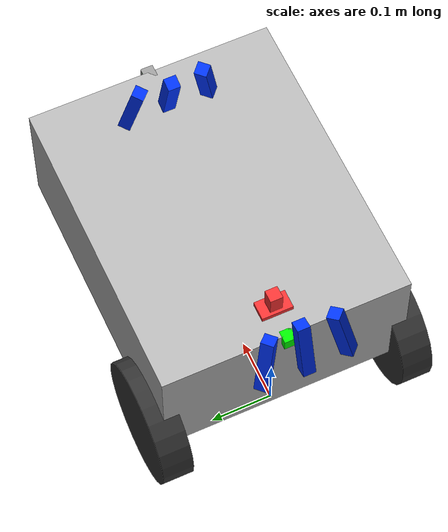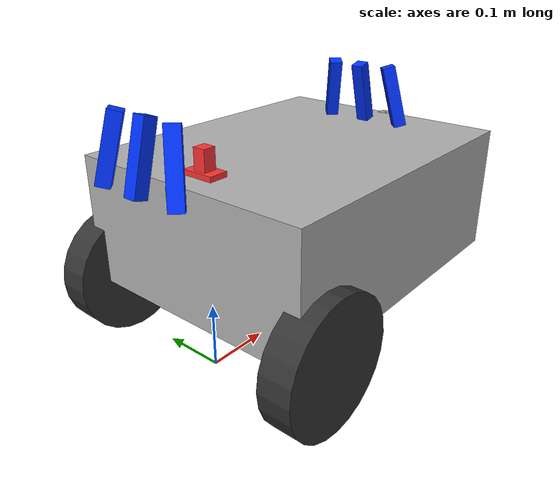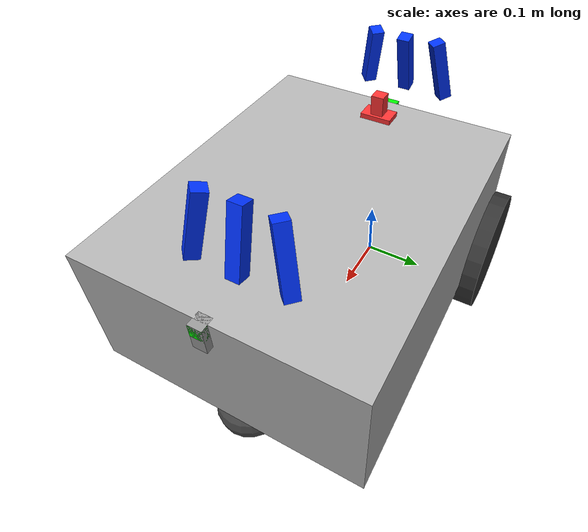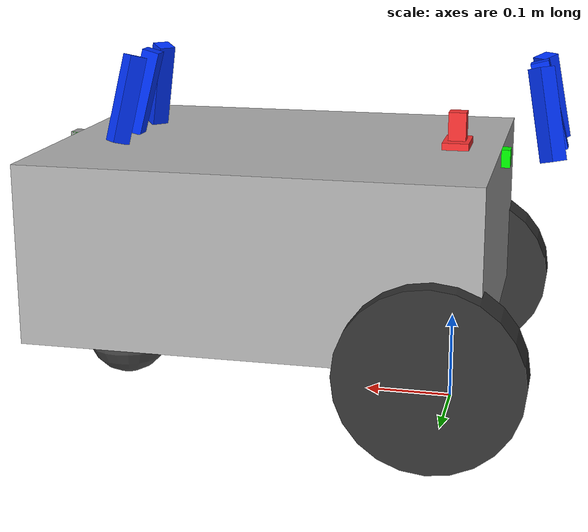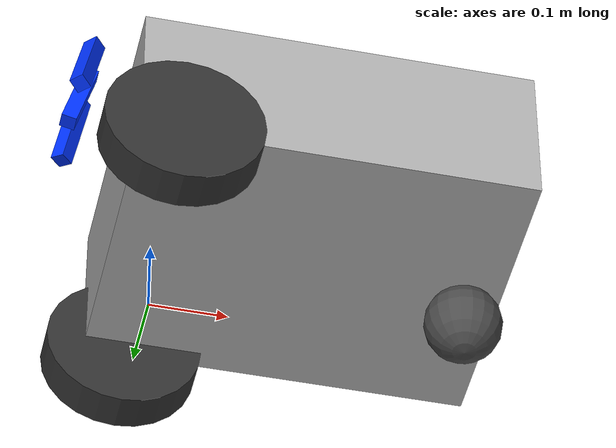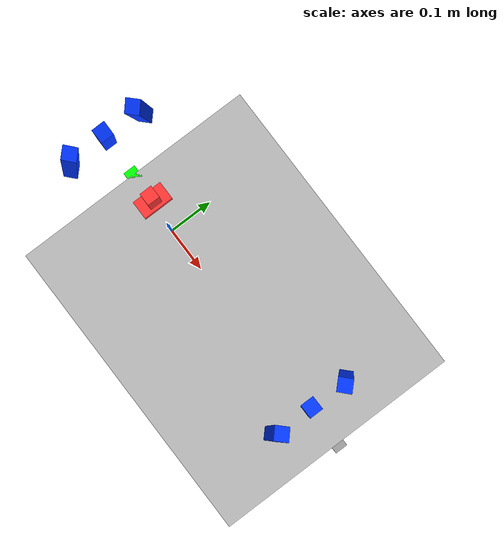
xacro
<?xml version="1.0"?>
<robot name="microbot" xmlns:xacro="http://www.ros.org/wiki/xacro">
    <xacro:include filename="$(find mower_simu)/model/base.xacro" />
    <xacro:include filename="$(find mower_simu)/model/gps.xacro" />
    <xacro:include filename="$(find mower_simu)/model/imu.xacro" />
    <xacro:include filename="$(find mower_simu)/model/sonar.xacro" />
    <xacro:include filename="$(find mower_simu)/model/camera.xacro" />
    <xacro:include filename="$(find mower_simu)/model/edge.xacro" />
</robot>

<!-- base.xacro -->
<robot name="microbot" xmlns:xacro="http://www.ros.org/wiki/xacro">
    <xacro:property name="M_PI" value="3.1415926"/>
    <xacro:property name="BASE_LINK_MASS"   value="10" />
    <xacro:property name="BASE_LINK_LENGTH" value="0.50"/>
    <xacro:property name="BASE_LINK_WIDTH" value="0.40"/>
    <xacro:property name="BASE_LINK_HEIGHT" value="0.20"/>

    <xacro:property name="WHEEL_MASS"   value="1" />
    <xacro:property name="WHEEL_RADIUS" value="0.1"/>
    <xacro:property name="WHEEL_WIDTH" value="0.05"/>
    <xacro:property name="WHEEL_POS_X" value="0.2"/>
    <xacro:property name="WHEEL_POS_Y" value="0.2"/>

    <xacro:property name="CASTER_MASS" value="0.2"/>
    <xacro:property name="CASTER_RADIUS" value="0.05"/>

    <material name="Black">
        <color rgba="0.2 0.2 0.2 1"/>
    </material>

    <material name="Grey">
        <color rgba="0.7 0.7 0.7 1"/>
    </material>

    <material name="DarkGrey">
        <color rgba="0.3 0.3 0.3 1"/>
    </material>
    <material name="Blue">
        <color rgba="0.0 0.2 1 1"/>
    </material>
    <material name="Red">
        <color rgba="1 0.2 0.2 1"/>
    </material>
    <material name="Green">
        <color rgba="0 1 0 1"/>
    </material>

    <xacro:macro name="sphere_inertial_matrix" params="m r">
        <inertial>
            <mass value="${m}" />
            <inertia ixx="${2*m*r*r/5}" ixy="0" ixz="0"
                iyy="${2*m*r*r/5}" iyz="0"
                izz="${2*m*r*r/5}" />
        </inertial>
    </xacro:macro>

    <xacro:macro name="cylinder_inertial_matrix" params="m r h">
        <inertial>
            <mass value="${m}" />
            <inertia ixx="${m*(3*r*r+h*h)/12}" ixy = "0" ixz = "0"
                iyy="${m*(3*r*r+h*h)/12}" iyz = "0"
                izz="${m*r*r/2}" />
        </inertial>
    </xacro:macro>

    <xacro:macro name="box_inertial_matrix" params="m a b c">
       <inertial>
          <mass value="${m}" />
           <inertia ixx="${m*(b*b+c*c)/12}" ixy = "0" ixz = "0"
              iyy="${m*(c*c+a*a)/12}" iyz = "0"
              izz="${m*(a*a+b*b)/12}" />
       </inertial>
    </xacro:macro>

    <link name="base_footprint">
        <visual>
            <origin xyz="0 0 0" rpy="0 0 0" />
            <geometry>
                <box size="0.001 0.001 0.001" />
            </geometry>
        </visual>
    </link>

    <gazebo reference="base_footprint">
        <turnGravityOff>false</turnGravityOff>
    </gazebo>

    <joint name="base_footprint_joint" type="fixed">
        <origin xyz="${WHEEL_POS_X} 0 ${BASE_LINK_HEIGHT/2 + CASTER_RADIUS*2}" rpy="0 0 0" />
        <parent link="base_footprint"/>
        <child link="base_link"/>
    </joint>

    <link name="base_link">
        <visual>
            <origin xyz="0 0 0" rpy="0 0 0"/>
            <geometry>
                <box size="${BASE_LINK_LENGTH} ${BASE_LINK_WIDTH} ${BASE_LINK_HEIGHT}" />
            </geometry>
            <material name="Grey"/>
        </visual>
        <collision>
            <origin xyz=" 0 0 0" rpy="0 0 0" />
            <geometry>
                <box size="${BASE_LINK_LENGTH} ${BASE_LINK_WIDTH} ${BASE_LINK_HEIGHT}"/>
            </geometry>
        </collision>
        <box_inertial_matrix  m="${BASE_LINK_MASS}" a="${BASE_LINK_LENGTH}" b="${BASE_LINK_WIDTH}"  c="${BASE_LINK_HEIGHT}" />
    </link>
    <gazebo reference="base_link">
        <material>Gazebo/Yellow</material>
    </gazebo>

    <joint name="front_caster_joint" type="continuous">
        <origin xyz="${WHEEL_POS_X} 0 ${-1*BASE_LINK_HEIGHT/2 - CASTER_RADIUS}" rpy="0 0 0"/>
        <parent link="base_link"/>
        <child link="front_caster_link"/>
        <axis xyz="1 1 0"/>
    </joint>/

    <link name="front_caster_link">
        <visual>
            <origin xyz="0 0 0" rpy="0 0 0"/>
            <geometry>
                <sphere radius="${CASTER_RADIUS}"/>
            </geometry>
            <material name="DarkGrey"/>
        </visual>
        <collision>
            <origin xyz="0 0 0" rpy="0 0 0"/>
            <geometry>
                <sphere radius="${CASTER_RADIUS}" />
            </geometry>
        </collision>
        <sphere_inertial_matrix  m="${CASTER_MASS}" r="${CASTER_RADIUS}" />
    </link>
    <gazebo reference="front_caster_link">
        <material>Gazebo/DarkGrey</material>
        <mu1>0</mu1>
        <mu2>0</mu2>
        <kp>10000000</kp>
        <kd>1</kd>
    </gazebo>

    <xacro:macro name="wheel" params="prefix reflect">
        <joint name="${prefix}_wheel_joint" type="continuous">
            <origin xyz="${-WHEEL_POS_X} ${reflect * WHEEL_POS_Y} ${-1*BASE_LINK_HEIGHT/2}" rpy="0 0 0"/>
            <parent link="base_link"/>
            <child link="${prefix}_wheel_link"/>
            <axis xyz="0 1 0"/>

        </joint>

        <link name="${prefix}_wheel_link">
            <visual>
                <origin xyz="0 0 0"  rpy="${M_PI/2} 0 0"/>
                <geometry>
                    <cylinder radius="${WHEEL_RADIUS}" length="${WHEEL_WIDTH}"/>
                </geometry>
                <material name="Black"/>
            </visual>
            <collision>
                <origin xyz="0 0 0" rpy="${M_PI/2} 0 0" />
                <geometry>
                    <cylinder radius="${WHEEL_RADIUS}" length = "${WHEEL_WIDTH}"/>
                </geometry>
            </collision>
            <cylinder_inertial_matrix  m="${WHEEL_MASS}" r="${WHEEL_RADIUS}" h="${WHEEL_WIDTH}" />
        </link>
        <gazebo reference="${prefix}_wheel_link">
            <material>Gazebo/Black</material>
	        <mu1>10000000</mu1>
		    <mu2>10000000</mu2>
		    <kp>10000000</kp>
		    <kd>1</kd>
        </gazebo>

        <transmission name="${prefix}_wheel_joint_trans">
            <type>transmission_interface/SimpleTransmission</type>
            <joint name="${prefix}_wheel_joint" >
                <hardwareInterface>hardware_interface/VelocityJointInterface</hardwareInterface>
            </joint>
            <actuator name="${prefix}_wheel_joint_motor">
                <hardwareInterface>hardware_interface/VelocityJointInterface</hardwareInterface>
                <mechanicalReduction>1</mechanicalReduction>
            </actuator>
        </transmission>

    </xacro:macro>

    <wheel prefix="left" reflect="1"/>
    <wheel prefix="right" reflect="-1"/>

    <gazebo>
        <plugin name="differential_drive_controller"
                filename="libgazebo_ros_diff_drive.so">
            <rosDebugLevel>Debug</rosDebugLevel>
            <publishWheelTF>false</publishWheelTF>
            <robotNamespace>/</robotNamespace>
            <odometrySource>world</odometrySource>

            <publishOdomTF>false</publishOdomTF>
            <broadcastTF>0</broadcastTF>
            <publishTf>0</publishTf>
            <publishWheelJointState>false</publishWheelJointState>

            <alwaysOn>true</alwaysOn>
            <updateRate>100.0</updateRate>
            <legacyMode>true</legacyMode>
            <leftJoint>left_wheel_joint</leftJoint>
            <rightJoint>right_wheel_joint</rightJoint>
            <wheelSeparation>${WHEEL_POS_Y*2}</wheelSeparation>
            <wheelDiameter>${2*WHEEL_RADIUS}</wheelDiameter>

            <wheelTorque>30</wheelTorque>
            <wheelAcceleration>2</wheelAcceleration>
            <commandTopic>cmd_vel</commandTopic>
            <odometryFrame>odom</odometryFrame>
            <odometryTopic></odometryTopic>
            <robotBaseFrame>base_footprint</robotBaseFrame>
        </plugin>

        <plugin name="joint_state_publisher_left" filename="libgazebo_ros_joint_state_publisher.so">
            <ros>
                <namespace>microbot</namespace>
            </ros>
            <jointName>left_wheel_joint</jointName>
            <updateRate>100</updateRate>
        </plugin>

        <plugin name="joint_state_publisher_right" filename="libgazebo_ros_joint_state_publisher.so">
            <ros>
                <namespace>microbot</namespace>
            </ros>
            <jointName>right_wheel_joint</jointName>
            <updateRate>100</updateRate>
        </plugin>

    </gazebo>

</robot>

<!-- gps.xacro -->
<robot name="microbot" xmlns:xacro="http://www.ros.org/wiki/xacro">
    <xacro:property name="GPS_MASS" value="0.01"/>
    <xacro:property name="GPS_POS_X" value="0.2"/>
    <xacro:property name="GPS_LENGTH" value="0.03"/>
    <xacro:property name="GPS_WIDTH" value="0.05"/>
    <xacro:property name="GPS_HEIGHT" value="0.008"/>

    <joint name="gps_base_joint" type="fixed">
        <origin xyz="${-GPS_POS_X} 0 ${BASE_LINK_HEIGHT/2+GPS_HEIGHT/2}" rpy="0 0 0"/>
        <parent link="base_link"/>
        <child link="gps_link"/>
        <axis xyz="0 0 0"/>
    </joint>

    <link name="gps_link">
        <visual>
            <origin xyz="0 0 0" rpy="0 0 0"/>
            <geometry>
                <box size="${GPS_LENGTH} ${GPS_WIDTH} ${GPS_HEIGHT}"/>
            </geometry>
            <material name="Red"/>
        </visual>
    </link>
    <gazebo reference="gps_link">
        <material>Gazebo/Black</material>
    </gazebo>

    <gazebo>
        <plugin name="gps" filename="libhector_gazebo_ros_gps.so">
            <updateRate>10.0</updateRate>
            <topicName>sensor_msgs/NavSatFix</topicName>
            <gaussianNoise>0.02 0.02 0.02</gaussianNoise>
            <velocityGaussianNoise>0 0 0</velocityGaussianNoise>
            <frameId>base_link</frameId>
            <referenceLatitude>40.14624865</referenceLatitude>
            <referenceLongitude>116.41126261</referenceLongitude>
            <referenceAltitude>30.0</referenceAltitude>
            <referenceHeading>90</referenceHeading>
        </plugin>
    </gazebo>
</robot>

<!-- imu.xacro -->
<robot name="microbot" xmlns:xacro="http://www.ros.org/wiki/xacro">
    <xacro:property name="IMU_MASS" value="0.01"/>
    <xacro:property name="IMU_POS_X" value="0.2"/>
    <xacro:property name="IMU_LENGTH" value="0.02"/>
    <xacro:property name="IMU_WIDTH" value="0.02"/>
    <xacro:property name="IMU_HEIGHT" value="0.04"/>

    <joint name="imu_base_joint" type="fixed">
        <origin xyz="${-IMU_POS_X} 0 ${BASE_LINK_HEIGHT/2+IMU_HEIGHT/2}" rpy="0 0 0"/>
        <parent link="base_link"/>
        <child link="imu_link"/>
        <axis xyz="0 0 0"/>
    </joint>

    <link name="imu_link">
        <visual>
            <origin xyz="0 0 0" rpy="0 0 0"/>
            <geometry>
                <box size="${IMU_LENGTH} ${IMU_WIDTH} ${IMU_HEIGHT}"/>
            </geometry>
            <material name="Red"/>
        </visual>
    </link>
    <gazebo reference="imu_link">
        <material>Gazebo/Green</material>
    </gazebo>

    <gazebo>
        <plugin name="imu" filename="libhector_gazebo_ros_imu.so">
            <updateRate>10.0</updateRate>
            <frameId>base_link</frameId>
            <topicName>sensor_msgs/Imu</topicName>
            <biasTopicName>imu/bias</biasTopicName>
            <gaussianNoise>0.1 0.1 0.1</gaussianNoise>
            <xyzOffset >0.0 0.0 0.0</xyzOffset>
            <rpyOffset >0.0 0.0 0.0</rpyOffset>
            <bodyName>imu_link</bodyName>
        </plugin>
    </gazebo>
</robot>

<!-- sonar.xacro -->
<robot name="microbot" xmlns:xacro="http://www.ros.org/wiki/xacro">
    <xacro:property name="SONAR_MASS" value="0.01"/>
    <xacro:property name="SONAR_POS_X_FRONT" value="0.17"/>
    <xacro:property name="SONAR_POS_X_REAR" value="0.30"/>
    <xacro:property name="SONAR_POS_Y" value="0.06"/>
    <xacro:property name="SONAR_ANGLE" value="0.78539815"/>
    <xacro:property name="SONAR_PITCH_ANGLE" value="0.26"/>
    <xacro:property name="SONAR_SENSOR_ANGLE" value="0.26"/>
    <xacro:property name="FOV" value="0.52"/>
    <xacro:property name="MATH_PI" value="3.1415926"/>

    <xacro:property name="MIN_DISTANCE" value="0.02"/>
    <xacro:property name="MAX_DISTANCE" value="4.0"/>
    <xacro:property name="RESOLUTION" value="0.01"/>

    <xacro:property name="SONAR_LENGTH" value="0.02"/>
    <xacro:property name="SONAR_WIDTH" value="0.02"/>
    <xacro:property name="SONAR_HEIGHT" value="0.1"/>

    <xacro:property name="NOISE" value="0.0"/>

    <joint name="sonar_base_joint_front_left" type="fixed">
        <origin xyz="${SONAR_POS_X_FRONT} ${SONAR_POS_Y} ${BASE_LINK_HEIGHT/2+SONAR_HEIGHT/2}" rpy="0 ${-SONAR_PITCH_ANGLE} ${SONAR_ANGLE}"/>
        <parent link="base_link"/>
        <child link="sonar_link_front_left"/>
        <axis xyz="0 0 0"/>
    </joint>

    <joint name="sonar_base_joint_front_center" type="fixed">
        <origin xyz="${SONAR_POS_X_FRONT} 0 ${BASE_LINK_HEIGHT/2+SONAR_HEIGHT/2}" rpy="0 ${-SONAR_PITCH_ANGLE} 0"/>
        <parent link="base_link"/>
        <child link="sonar_link_front_center"/>
        <axis xyz="0 0 0"/>
    </joint>

    <joint name="sonar_base_joint_front_right" type="fixed">
        <origin xyz="${SONAR_POS_X_FRONT} ${-SONAR_POS_Y} ${BASE_LINK_HEIGHT/2+SONAR_HEIGHT/2}" rpy="0 ${-SONAR_PITCH_ANGLE} ${-SONAR_ANGLE}"/>
        <parent link="base_link"/>
        <child link="sonar_link_front_right"/>
        <axis xyz="0 0 0"/>
    </joint>

    <joint name="sonar_base_rear_left" type="fixed">
        <origin xyz="${-SONAR_POS_X_REAR} ${-SONAR_POS_Y} ${BASE_LINK_HEIGHT/2+SONAR_HEIGHT/2}" rpy="0 ${-SONAR_PITCH_ANGLE} ${MATH_PI+SONAR_ANGLE}"/>
        <parent link="base_link"/>
        <child link="sonar_link_rear_left"/>
        <axis xyz="0 0 0"/>
    </joint>

    <joint name="sonar_base_rear_center" type="fixed">
        <origin xyz="${-SONAR_POS_X_REAR} 0 ${BASE_LINK_HEIGHT/2+SONAR_HEIGHT/2}" rpy="0 ${-SONAR_PITCH_ANGLE} ${MATH_PI}"/>
        <parent link="base_link"/>
        <child link="sonar_link_rear_center"/>
        <axis xyz="0 0 0"/>
    </joint>

    <joint name="sonar_base_rear_right" type="fixed">
        <origin xyz="${-SONAR_POS_X_REAR} ${SONAR_POS_Y} ${BASE_LINK_HEIGHT/2+SONAR_HEIGHT/2}" rpy="0 ${-SONAR_PITCH_ANGLE} ${MATH_PI-SONAR_ANGLE}"/>
        <parent link="base_link"/>
        <child link="sonar_link_rear_right"/>
        <axis xyz="0 0 0"/>
    </joint>

    <link name="sonar_link_front_left">
        <visual>
            <origin xyz="0 0 0" rpy="0 0 0"/>
            <geometry>
                <box size="${SONAR_LENGTH} ${SONAR_WIDTH} ${SONAR_HEIGHT}"/>
            </geometry>
            <material name="Blue"/>
        </visual>
    </link>
    <link name="sonar_link_front_center">
        <visual>
            <origin xyz="0 0 0" rpy="0 0 0"/>
            <geometry>
                <box size="${SONAR_LENGTH} ${SONAR_WIDTH} ${SONAR_HEIGHT}"/>
            </geometry>
            <material name="Blue"/>
        </visual>
    </link>
    <link name="sonar_link_front_right">
        <visual>
            <origin xyz="0 0 0" rpy="0 0 0"/>
            <geometry>
                <box size="${SONAR_LENGTH} ${SONAR_WIDTH} ${SONAR_HEIGHT}"/>
            </geometry>
            <material name="Blue"/>
        </visual>
    </link>

   <link name="sonar_link_rear_left">
        <visual>
            <origin xyz="0 0 0" rpy="0 0 0"/>
            <geometry>
                <box size="${SONAR_LENGTH} ${SONAR_WIDTH} ${SONAR_HEIGHT}"/>
            </geometry>
            <material name="Blue"/>
        </visual>
    </link>
    <link name="sonar_link_rear_center">
        <visual>
            <origin xyz="0 0 0" rpy="0 0 0"/>
            <geometry>
                <box size="${SONAR_LENGTH} ${SONAR_WIDTH} ${SONAR_HEIGHT}"/>
            </geometry>
            <material name="Blue"/>
        </visual>
    </link>
    <link name="sonar_link_rear_right">
        <visual>
            <origin xyz="0 0 0" rpy="0 0 0"/>
            <geometry>
                <box size="${SONAR_LENGTH} ${SONAR_WIDTH} ${SONAR_HEIGHT}"/>
            </geometry>
            <material name="Blue"/>
        </visual>
    </link>

    <gazebo reference="sonar_link_front_left">
        <material>Gazebo/Blue</material>
    </gazebo>
    <gazebo reference="sonar_link_front_center">
        <material>Gazebo/Blue</material>
    </gazebo>
    <gazebo reference="sonar_link_front_right">
        <material>Gazebo/Blue</material>
    </gazebo>

    <gazebo reference="sonar_link_rear_left">
        <material>Gazebo/Blue</material>
    </gazebo>
    <gazebo reference="sonar_link_rear_center">
        <material>Gazebo/Blue</material>
    </gazebo>
    <gazebo reference="sonar_link_rear_right">
        <material>Gazebo/Blue</material>
    </gazebo>

    <gazebo reference="sonar_link_front_left">
        <sensor type="ray" name="sonar_link_front_left">
        <pose>0 0 0 0 0 0</pose>
        <visualize>true</visualize>
        <update_rate>10</update_rate>
        <ray>
            <scan>
            <horizontal>
                <samples>10</samples>
                <resolution>1</resolution>
                <min_angle>${-SONAR_SENSOR_ANGLE}</min_angle>
                <max_angle>${SONAR_SENSOR_ANGLE}</max_angle>
            </horizontal>
            <vertical>
                <samples>10</samples>
                <resolution>1</resolution>
                <min_angle>${-SONAR_SENSOR_ANGLE}</min_angle>
                <max_angle>${SONAR_SENSOR_ANGLE}</max_angle>
            </vertical>
            </scan>
            <range>
                <min>${MIN_DISTANCE}</min>
                <max>${MAX_DISTANCE}</max>
                <resolution>${RESOLUTION}</resolution>
            </range>
        </ray>
        <plugin name="ultrasonic_sensor_controller" filename="libgazebo_ros_range.so">
            <gaussianNoise>${NOISE}</gaussianNoise>
            <alwaysOn>true</alwaysOn>
            <updateRate>10</updateRate>
            <topicName>sensor_msgs/SonarFrontLeft</topicName>
            <frameName>ultrasonic_sensor</frameName>
            <fov>${FOV}</fov>
            <radiation>ultrasound</radiation>
            <min_angle>${-SONAR_SENSOR_ANGLE}</min_angle>
            <max_angle>${SONAR_SENSOR_ANGLE}</max_angle>
        </plugin>
        </sensor>
    </gazebo>

    <gazebo reference="sonar_link_front_center">
        <sensor type="ray" name="sonar_link_front_center">
        <pose>0 0 0 0 0 0</pose>
        <visualize>true</visualize>
        <update_rate>10</update_rate>
        <ray>
            <scan>
            <horizontal>
                <samples>10</samples>
                <resolution>1</resolution>
                <min_angle>${-SONAR_SENSOR_ANGLE}</min_angle>
                <max_angle>${SONAR_SENSOR_ANGLE}</max_angle>
            </horizontal>
            <vertical>
                <samples>10</samples>
                <resolution>1</resolution>
                <min_angle>${-SONAR_SENSOR_ANGLE}</min_angle>
                <max_angle>${SONAR_SENSOR_ANGLE}</max_angle>
            </vertical>
            </scan>
            <range>
                <min>${MIN_DISTANCE}</min>
                <max>${MAX_DISTANCE}</max>
                <resolution>${RESOLUTION}</resolution>
            </range>
        </ray>
        <plugin name="ultrasonic_sensor_controller" filename="libgazebo_ros_range.so">
            <gaussianNoise>${NOISE}</gaussianNoise>
            <alwaysOn>true</alwaysOn>
            <updateRate>10</updateRate>
            <topicName>sensor_msgs/SonarFrontCenter</topicName>
            <frameName>ultrasonic_sensor</frameName>
            <fov>${FOV}</fov>
            <radiation>ultrasound</radiation>
            <min_angle>${-SONAR_SENSOR_ANGLE}</min_angle>
            <max_angle>${SONAR_SENSOR_ANGLE}</max_angle>
        </plugin>
        </sensor>
    </gazebo>

    <gazebo reference="sonar_link_front_right">
        <sensor type="ray" name="sonar_link_front_right">
        <pose>0 0 0 0 0 0</pose>
        <visualize>true</visualize>
        <update_rate>10</update_rate>
        <ray>
            <scan>
            <horizontal>
                <samples>10</samples>
                <resolution>1</resolution>
                <min_angle>${-SONAR_SENSOR_ANGLE}</min_angle>
                <max_angle>${SONAR_SENSOR_ANGLE}</max_angle>
            </horizontal>
            <vertical>
                <samples>10</samples>
                <resolution>1</resolution>
                <min_angle>${-SONAR_SENSOR_ANGLE}</min_angle>
                <max_angle>${SONAR_SENSOR_ANGLE}</max_angle>
            </vertical>
            </scan>
            <range>
                <min>${MIN_DISTANCE}</min>
                <max>${MAX_DISTANCE}</max>
                <resolution>${RESOLUTION}</resolution>
            </range>
        </ray>
        <plugin name="ultrasonic_sensor_controller" filename="libgazebo_ros_range.so">
            <gaussianNoise>${NOISE}</gaussianNoise>
            <alwaysOn>true</alwaysOn>
            <updateRate>10</updateRate>
            <topicName>sensor_msgs/SonarFrontRight</topicName>
            <frameName>ultrasonic_sensor</frameName>
            <fov>${FOV}</fov>
            <radiation>ultrasound</radiation>
            <min_angle>${-SONAR_SENSOR_ANGLE}</min_angle>
            <max_angle>${SONAR_SENSOR_ANGLE}</max_angle>
        </plugin>
        </sensor>
    </gazebo>

    <gazebo reference="sonar_link_rear_left">
        <sensor type="ray" name="sonar_link_rear_left">
        <pose>0 0 0 0 0 0</pose>
        <visualize>true</visualize>
        <update_rate>10</update_rate>
        <ray>
            <scan>
            <horizontal>
                <samples>10</samples>
                <resolution>1</resolution>
                <min_angle>${-SONAR_SENSOR_ANGLE}</min_angle>
                <max_angle>${SONAR_SENSOR_ANGLE}</max_angle>
            </horizontal>
            <vertical>
                <samples>10</samples>
                <resolution>1</resolution>
                <min_angle>${-SONAR_SENSOR_ANGLE}</min_angle>
                <max_angle>${SONAR_SENSOR_ANGLE}</max_angle>
            </vertical>
            </scan>
            <range>
                <min>${MIN_DISTANCE}</min>
                <max>${MAX_DISTANCE}</max>
                <resolution>${RESOLUTION}</resolution>
            </range>
        </ray>
        <plugin name="ultrasonic_sensor_controller" filename="libgazebo_ros_range.so">
            <gaussianNoise>${NOISE}</gaussianNoise>
            <alwaysOn>true</alwaysOn>
            <updateRate>10</updateRate>
            <topicName>sensor_msgs/SonarRearLeft</topicName>
            <frameName>ultrasonic_sensor</frameName>
            <fov>${FOV}</fov>
            <radiation>ultrasound</radiation>
            <min_angle>${-SONAR_SENSOR_ANGLE}</min_angle>
            <max_angle>${SONAR_SENSOR_ANGLE}</max_angle>
        </plugin>
        </sensor>
    </gazebo>

    <gazebo reference="sonar_link_rear_center">
        <sensor type="ray" name="sonar_link_rear_center">
        <pose>0 0 0 0 0 0</pose>
        <visualize>true</visualize>
        <update_rate>10</update_rate>
        <ray>
            <scan>
            <horizontal>
                <samples>10</samples>
                <resolution>1</resolution>
                <min_angle>${-SONAR_SENSOR_ANGLE}</min_angle>
                <max_angle>${SONAR_SENSOR_ANGLE}</max_angle>
            </horizontal>
            <vertical>
                <samples>10</samples>
                <resolution>1</resolution>
                <min_angle>${-SONAR_SENSOR_ANGLE}</min_angle>
                <max_angle>${SONAR_SENSOR_ANGLE}</max_angle>
            </vertical>
            </scan>
            <range>
                <min>${MIN_DISTANCE}</min>
                <max>${MAX_DISTANCE}</max>
                <resolution>${RESOLUTION}</resolution>
            </range>
        </ray>
        <plugin name="ultrasonic_sensor_controller" filename="libgazebo_ros_range.so">
            <gaussianNoise>${NOISE}</gaussianNoise>
            <alwaysOn>true</alwaysOn>
            <updateRate>10</updateRate>
            <topicName>sensor_msgs/SonarRearCenter</topicName>
            <frameName>ultrasonic_sensor</frameName>
            <fov>${FOV}</fov>
            <radiation>ultrasound</radiation>
            <min_angle>${-SONAR_SENSOR_ANGLE}</min_angle>
            <max_angle>${SONAR_SENSOR_ANGLE}</max_angle>
        </plugin>
        </sensor>
    </gazebo>

    <gazebo reference="sonar_link_rear_right">
        <sensor type="ray" name="sonar_link_rear_right">
        <pose>0 0 0 0 0 0</pose>
        <visualize>true</visualize>
        <update_rate>10</update_rate>
        <ray>
            <scan>
            <horizontal>
                <samples>10</samples>
                <resolution>1</resolution>
                <min_angle>${-SONAR_SENSOR_ANGLE}</min_angle>
                <max_angle>${SONAR_SENSOR_ANGLE}</max_angle>
            </horizontal>
            <vertical>
                <samples>10</samples>
                <resolution>1</resolution>
                <min_angle>${-SONAR_SENSOR_ANGLE}</min_angle>
                <max_angle>${SONAR_SENSOR_ANGLE}</max_angle>
            </vertical>
            </scan>
            <range>
                <min>${MIN_DISTANCE}</min>
                <max>${MAX_DISTANCE}</max>
                <resolution>${RESOLUTION}</resolution>
            </range>
        </ray>
        <plugin name="ultrasonic_sensor_controller" filename="libgazebo_ros_range.so">
            <gaussianNoise>${NOISE}</gaussianNoise>
            <alwaysOn>true</alwaysOn>
            <updateRate>10</updateRate>
            <topicName>sensor_msgs/SonarRearRight</topicName>
            <frameName>ultrasonic_sensor</frameName>
            <fov>${FOV}</fov>
            <radiation>ultrasound</radiation>
            <min_angle>${-SONAR_SENSOR_ANGLE}</min_angle>
            <max_angle>${SONAR_SENSOR_ANGLE}</max_angle>
        </plugin>
        </sensor>
    </gazebo>
</robot>

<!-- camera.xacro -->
<robot name="microbot" xmlns:xacro="http://www.ros.org/wiki/xacro">
    <xacro:property name="CAM_MASS" value="0.01"/>
    <xacro:property name="CAM_POS_X" value="0.25"/>
    <xacro:property name="CAM_LENGTH" value="0.02"/>
    <xacro:property name="CAM_WIDTH" value="0.02"/>
    <xacro:property name="CAM_HEIGHT" value="0.04"/>

    <joint name="cam_base_joint" type="fixed">
        <origin xyz="${CAM_POS_X} 0 ${BASE_LINK_HEIGHT/2-CAM_HEIGHT/2}" rpy="0 0 0"/>
        <parent link="base_link"/>
        <child link="cam_link"/>
        <axis xyz="0 0 0"/>
    </joint>

    <link name="cam_link">
        <visual>
            <origin xyz="0 0 0" rpy="0 0 0"/>
            <geometry>
                <box size="${CAM_LENGTH} ${CAM_WIDTH} ${CAM_HEIGHT}"/>
            </geometry>
            <material name="Gray"/>
        </visual>
    </link>
    <gazebo reference="cam_link">
        <material>Gazebo/Gray</material>
    </gazebo>

    <gazebo reference="cam_link">
    <sensor type="camera" name="camera1">
        <update_rate>50.0</update_rate>
        <camera name="head">
            <horizontal_fov>1.3962634</horizontal_fov>
            <image>
                <width>640</width>
                <height>480</height>
                <format>R8G8B8</format>
            </image>
            <clip>
                <near>0.02</near>
                <far>300</far>
            </clip>
            <noise>
                <type>gaussian</type>
                <mean>0.0</mean>
                <stddev>0.007</stddev>
            </noise>
        </camera>
        <plugin name="camera_controller" filename="libgazebo_ros_camera.so">
            <alwaysOn>true</alwaysOn>
            <updateRate>0.0</updateRate>
            <cameraName>camera</cameraName>
            <imageTopicName>image_raw</imageTopicName>
            <cameraInfoTopicName>camera_info</cameraInfoTopicName>
            <frameName>camera_link</frameName>
            <hackBaseline>0.07</hackBaseline>
			<horizontalFOV>1.0472</horizontalFOV>
            <distortionK1>0.0</distortionK1>
            <distortionK2>0.0</distortionK2>
            <distortionK3>0.0</distortionK3>
            <distortionT1>0.0</distortionT1>
            <distortionT2>0.0</distortionT2>
        </plugin>
    </sensor>
    </gazebo>

</robot>

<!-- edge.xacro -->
<robot name="microbot" xmlns:xacro="http://www.ros.org/wiki/xacro">
    <xacro:property name="EDGE_POS_X" value="0.25"/>
    <xacro:property name="EDGE_POS_Y" value="0.0"/>
    <xacro:property name="EDGE_LENGTH" value="0.02"/>
    <xacro:property name="EDGE_WIDTH" value="0.02"/>
    <xacro:property name="EDGE_HEIGHT" value="0.02"/>
    <xacro:property name="MATH_PI" value="3.1415926"/>

    <joint name="edge_base_joint_front" type="fixed">
        <origin xyz="${EDGE_POS_X} ${EDGE_POS_Y} ${BASE_LINK_HEIGHT/2 - EDGE_HEIGHT/2}" rpy="0 0 0"/>
        <parent link="base_link"/>
        <child link="edge_link_front"/>
        <axis xyz="0 0 0"/>
    </joint>

    <joint name="edge_base_joint_rear" type="fixed">
        <origin xyz="${-EDGE_POS_X} ${EDGE_POS_Y} ${BASE_LINK_HEIGHT/2 - EDGE_HEIGHT/2}" rpy="0 0 ${MATH_PI}"/>
        <parent link="base_link"/>
        <child link="edge_link_rear"/>
        <axis xyz="0 0 0"/>
    </joint>

    <link name="edge_link_front">
        <visual>
            <origin xyz="0 0 0" rpy="0 0 0"/>
            <geometry>
                <box size="${EDGE_LENGTH} ${EDGE_WIDTH} ${EDGE_HEIGHT}"/>
            </geometry>
            <material name="Green"/>
        </visual>
    </link>
    <link name="edge_link_rear">
        <visual>
            <origin xyz="0 0 0" rpy="0 0 0"/>
            <geometry>
                <box size="${EDGE_LENGTH} ${EDGE_WIDTH} ${EDGE_HEIGHT}"/>
            </geometry>
            <material name="Green"/>
        </visual>
    </link>

    <gazebo reference="edge_link1">
        <material>Gazebo/Green</material>
    </gazebo>
    <gazebo reference="edge_link2">
        <material>Gazebo/Green</material>
    </gazebo>

</robot>
